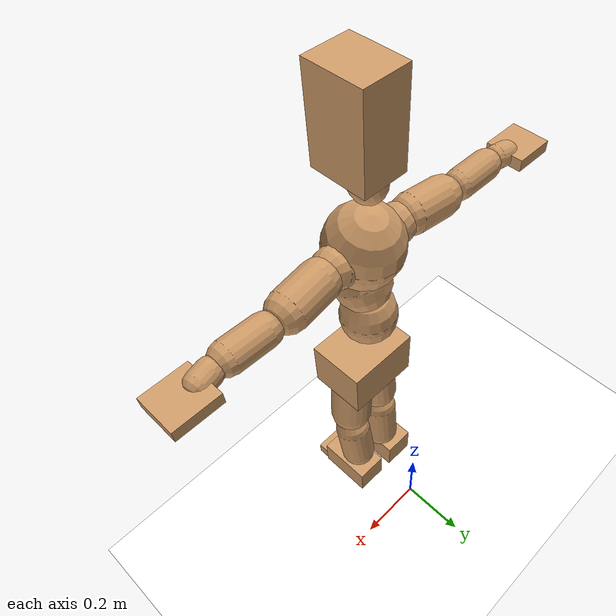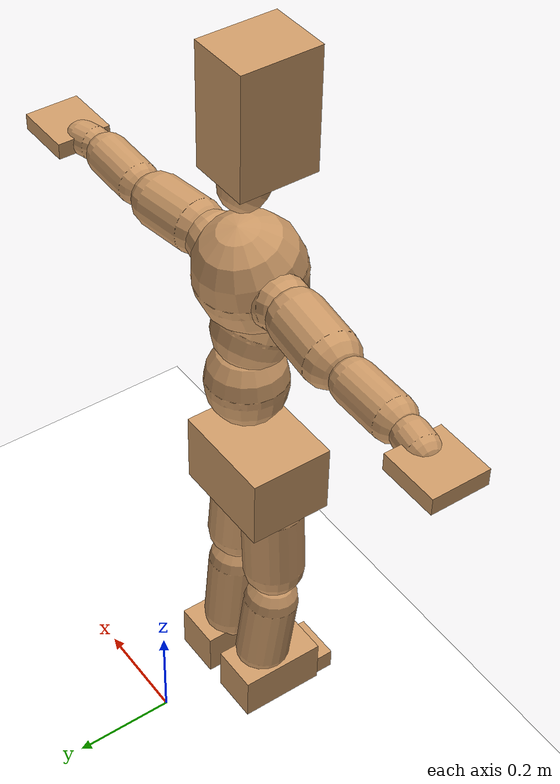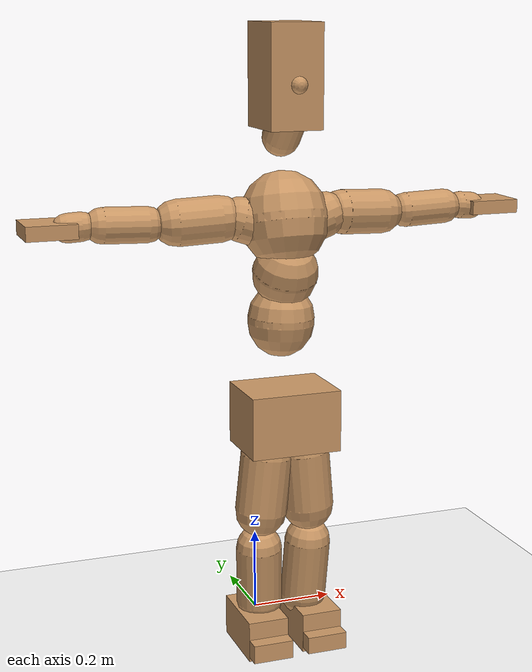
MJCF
<mujoco model="humanoid">
  <option integrator="implicitfast" />

  <visual>
    <global offwidth="1280" offheight="960" />
    <headlight active="1" ambient="0.34 0.34 0.34" diffuse="0.5 0.5 0.5" />
  </visual>

  <default>
    <joint damping="2" stiffness="2" armature="0.01" limited="true" solimplimit="0 .99 .01" />
    <geom condim="1" friction="0.7 0.005 0.0001" solimp=".99 .99 .003" solref="0.015 1" margin="0.001" rgba="0.8 0.6 .4 1" />
    <default class="smplcontact">
      <geom condim="3" friction="1. 0.005 0.0001" solref="0.015 1" solimp="0.98 0.98 0.001" priority="1" />
    </default>
    <default class="stiff_medium">
      <joint stiffness="10" />
    </default>
    <default class="stiff_medium_higher">
      <joint stiffness="50" />
    </default>
    <default class="stiff_high">
      <joint stiffness="100" />
    </default>
  </default>

  <asset>
    <texture type="skybox" builtin="gradient" rgb1="0.99 0.99 0.99" rgb2="0.608 0.828 0.892" width="100" />
    <texture builtin="flat" height="1278" mark="cross" markrgb="1 1 1" name="texgeom" random="0.01" rgb1="0.8 0.6 0.4" rgb2="0.8 0.6 0.4" type="cube" width="127" />
    <texture name="texplane" type="2d" builtin="checker" markrgb="1 1 1" rgb1="0.756 0.772 0.76" rgb2="0.6 0.6 0.6" width="100" height="100" />
    <material name="MatPlane" reflectance="0.5" texture="texplane" texrepeat="1 1" texuniform="true" />
    <material name="geom" texture="texgeom" texuniform="true" />
  </asset>

  <worldbody>
    <light name="tracking_light" pos="0 0 7" dir="0 0 -1" directional="true" cutoff="100" exponent="1" diffuse="1 1 1" specular="0.1 0.1 0.1" mode="trackcom" />
    <camera name="back" pos="0 3 2.4" xyaxes="-1 0 0 0 -1 2" mode="trackcom" />
    <camera name="side" pos="-3 0 2.4" xyaxes="0 -1 0 1 0 2" mode="trackcom" />
    <camera name="front_side" pos="-2.8 -2.8 0.8" xyaxes="0.5 -0.5 0 0.1 0.1 1" mode="trackcom" />
    <geom condim="3" name="floor" pos="0 0 0" rgba="1 1 1 1" size="100 100 .2" type="plane" material="MatPlane" />
    <body name="Pelvis" pos="-0.0018 -0.2233 0.58114" euler="90 0 0">
      <site name="Pelvis" size="0.01" />
      <freejoint name="Pelvis" />
      <geom type="box" pos="-0.0000 -0.0121 -0.0055" size="0.1069 0.0722 0.083" quat="1.0000 0.0000 0.0000 0.0000" density="3165.830099" name="Pelvis" />
      <body name="L_Hip" pos="0.0417 -0.05484 -0.00408">
        <joint name="L_Hip_x" type="hinge" pos="0 0 0" axis="1 0 0" stiffness="4.397824042553191" range="-160.0 22.92" class="stiff_medium" damping="5.319089110098848" armature="0.0028592633980818096"/>
        <joint name="L_Hip_y" type="hinge" pos="0 0 0" axis="0 1 0" stiffness="4.438903723404256" range="-70.0 70.0" class="stiff_medium" damping="4.967409097366763" armature="0.005558839451845188"/>
        <joint name="L_Hip_z" type="hinge" pos="0 0 0" axis="0 0 1" stiffness="4.442079574468085" range="-28.65 90.0" class="stiff_medium" damping="3.5611331460071307" armature="0.002854894666111244"/>
        <geom type="capsule" density="2040.816327" fromto="0.00414 -0.045 -0.00054 0.01644 -0.18012 -0.00216" size="0.0615" name="L_Hip" />
        <body name="L_Knee" pos="0.02058 -0.22512 -0.0027">
          <joint name="L_Knee_x" type="hinge" pos="0 0 0" axis="1 0 0" range="-5.16 171.89" damping="3.0827000143891885" armature="0.003175215421320088" stiffness="0.9352750638297871"/>
          <joint name="L_Knee_y" type="hinge" pos="0 0 0" axis="0 1 0" range="-4.58 6.88" damping="4.212220667157235" armature="0.006135039699020378" stiffness="0.903763658186864"/>
          <joint name="L_Knee_z" type="hinge" pos="0 0 0" axis="0 0 1" range="-6.88 4.58" damping="3.0956438525734975" armature="0.0031516224472256994" stiffness="0.9502061063829786"/>
          <geom type="capsule" density="1234.567901" fromto="-0.00162 -0.04776 -0.00522 -0.00654 -0.19104 -0.021" size="0.0541" name="L_Knee" />
          <body name="L_Ankle" pos="-0.00816 -0.2388 -0.02622">
            <joint name="L_Ankle_x" type="hinge" pos="0 0 0" axis="1 0 0" range="-45.84 45.84" class="stiff_medium" damping="3.536602461224016" armature="0.005790535633673964" stiffness="6.000000000000002"/>
            <joint name="L_Ankle_y" type="hinge" pos="0 0 0" axis="0 1 0" range="-74.48 22.92" class="stiff_medium" damping="1.7920530037828966" armature="0.005947136978457965" stiffness="6.000000000000002"/>
            <joint name="L_Ankle_z" type="hinge" pos="0 0 0" axis="0 0 1" range="-4.58 4.58" class="stiff_medium" damping="3.880755062801919" armature="0.006972342526603111" stiffness="6.000000000000002"/>
            <geom type="box" pos="0.01398 -0.01434 0.01452" size="0.0483 0.0464 0.085" quat="1.0000 0.0000 0.0000 0.0000" density="449.071558" name="L_Ankle" class="smplcontact" />
            <body name="L_Toe" pos="0.01584 -0.03348 0.07158">
              <joint name="L_Toe_x" type="hinge" pos="0 0 0" axis="1 0 0" range="-91.67 22.92" armature="0.007566797366862117" damping="1.3476020807519216" stiffness="1.2000000000000004"/>
              <joint name="L_Toe_y" type="hinge" pos="0 0 0" axis="0 1 0" range="-4.58 4.58" armature="0.008285612311110547" damping="1.410158485655613" stiffness="1.2000000000000004"/>
              <joint name="L_Toe_z" type="hinge" pos="0 0 0" axis="0 0 1" range="-4.58 4.58" armature="0.009739017438343595" damping="1.5288440683086237" stiffness="1.2000000000000004"/>
              <geom type="box" pos="-0.0018 0.0033 0.01488" size="0.0478 0.02 0.0496" quat="1.0000 0.0000 0.0000 0.0000" density="423.206892" name="L_Toe" class="smplcontact" />
            </body>
          </body>
        </body>
      </body>
      <body name="R_Hip" pos="-0.04062 -0.0543 -0.00258">
        <joint name="R_Hip_x" type="hinge" pos="0 0 0" axis="1 0 0" stiffness="4.397824042553191" range="-160.0 22.92" class="stiff_medium" damping="5.319089110098848" armature="0.0028592633980818096"/>
        <joint name="R_Hip_y" type="hinge" pos="0 0 0" axis="0 1 0" stiffness="4.438903723404256" range="-70.0 70.0" class="stiff_medium" damping="4.967409097366763" armature="0.005558839451845188"/>
        <joint name="R_Hip_z" type="hinge" pos="0 0 0" axis="0 0 1" stiffness="4.442079574468085" range="-90.0 28.65" class="stiff_medium" damping="3.5611331460071307" armature="0.002854894666111244"/>
        <geom type="capsule" density="2040.816327" fromto="-0.00462 -0.0459 -0.00108 -0.01836 -0.18366 -0.00426" size="0.0606" name="R_Hip" />
        <body name="R_Knee" pos="-0.02298 -0.22956 -0.00534">
          <joint name="R_Knee_x" type="hinge" pos="0 0 0" axis="1 0 0" range="-5.16 171.89" damping="3.0827000143891885" armature="0.003175215421320088" stiffness="0.9352750638297871"/>
          <joint name="R_Knee_y" type="hinge" pos="0 0 0" axis="0 1 0" range="-6.88 4.58" damping="4.212220667157235" armature="0.006135039699020378" stiffness="0.903763658186864"/>
          <joint name="R_Knee_z" type="hinge" pos="0 0 0" axis="0 0 1" range="-4.58 6.88" damping="3.0956438525734975" armature="0.0031516224472256994" stiffness="0.9502061063829786"/>
          <geom type="capsule" density="1234.567901" fromto="0.00192 -0.04782 -0.0051 0.00756 -0.19122 -0.02028" size="0.0541" name="R_Knee" />
          <body name="R_Ankle" pos="0.00948 -0.23904 -0.02538">
            <joint name="R_Ankle_x" type="hinge" pos="0 0 0" axis="1 0 0" range="-45.84 45.84" class="stiff_medium" damping="3.536602461224016" armature="0.005790535633673964" stiffness="6.000000000000002"/>
            <joint name="R_Ankle_y" type="hinge" pos="0 0 0" axis="0 1 0" range="-22.92 74.48" class="stiff_medium" damping="1.7920530037828966" armature="0.005947136978457965" stiffness="6.000000000000002"/>
            <joint name="R_Ankle_z" type="hinge" pos="0 0 0" axis="0 0 1" range="-4.58 4.58" class="stiff_medium" damping="3.880755062801919" armature="0.006972342526603111" stiffness="6.000000000000002"/>
            <geom type="box" pos="-0.01272 -0.01044 0.01536" size="0.0483 0.0478 0.0865" quat="1.0000 0.0000 0.0000 0.0000" density="434.700981" name="R_Ankle" class="smplcontact" />
            <body name="R_Toe" pos="-0.01524 -0.02886 0.07398">
              <joint name="R_Toe_x" type="hinge" pos="0 0 0" axis="1 0 0" range="-91.67 22.92" armature="0.007566797366862117" damping="1.3476020807519216" stiffness="1.2000000000000004"/>
              <joint name="R_Toe_y" type="hinge" pos="0 0 0" axis="0 1 0" range="-4.58 4.58" armature="0.008285612311110547" damping="1.410158485655613" stiffness="1.2000000000000004"/>
              <joint name="R_Toe_z" type="hinge" pos="0 0 0" axis="0 0 1" range="-4.58 4.58" armature="0.009739017438343595" damping="1.5288440683086237" stiffness="1.2000000000000004"/>
              <geom type="box" pos="0.00252 0.0027 0.01362" size="0.0479 0.0216 0.0493" quat="1.0000 0.0000 0.0000 0.0000" density="407.384095" name="R_Toe" class="smplcontact" />
            </body>
          </body>
        </body>
      </body>
      <body name="Torso" pos="-0.003 0.1308 -0.03204">
        <joint name="Torso_x" type="hinge" pos="0 0 0" axis="1 0 0" range="-25.78 57.3" class="stiff_medium" damping="16.70738652663647" armature="0.01171023884090964" stiffness="10.594214680851064"/>
        <joint name="Torso_y" type="hinge" pos="0 0 0" axis="0 1 0" range="-57.3 57.3" class="stiff_high" damping="12.623214725191652" armature="0.0036974054448070622" stiffness="107.74146382978722"/>
        <joint name="Torso_z" type="hinge" pos="0 0 0" axis="0 0 1" range="-34.38 34.38" class="stiff_high" damping="20.071967363559263" armature="0.009024248347846871" stiffness="111.61147674418605"/>
        <geom type="capsule" density="2040.816327" fromto="0.003 0.07296 0.0006 0.0036 0.08916 0.00072" size="0.0769" name="Torso" />
        <body name="Spine" pos="0.0066 0.16224 0.00132">
          <joint name="Spine_x" type="hinge" pos="0 0 0" axis="1 0 0" stiffness="10.280432173913045" range="-25.78 57.3" class="stiff_medium" damping="15.885833461063587" armature="0.010910034411156766"/>
          <joint name="Spine_y" type="hinge" pos="0 0 0" axis="0 1 0" stiffness="9.942316190476191" range="-57.3 57.3" class="stiff_high" damping="4.817877895223455" armature="0.00364790931392791"/>
          <joint name="Spine_z" type="hinge" pos="0 0 0" axis="0 0 1" stiffness="20.654877499999998" range="-34.38 34.38" class="stiff_high" damping="10.159230450327204" armature="0.006940112392800273"/>
          <geom type="capsule" density="2040.816327" fromto="0.00084 0.02856 0.01368 0.00096 0.03492 0.0168" size="0.0755" name="Spine" />
          <body name="Chest" pos="0.0018 0.06348 0.03048">
            <joint name="Chest_x" type="hinge" pos="0 0 0" axis="1 0 0" stiffness="9.397147727272728" range="-25.78 57.3" class="stiff_medium" damping="14.892475081462655" armature="0.01048950977177003"/>
            <joint name="Chest_y" type="hinge" pos="0 0 0" axis="0 1 0" stiffness="8.163795" range="-57.3 57.3" class="stiff_high" damping="4.363516163346293" armature="0.003644190850384294"/>
            <joint name="Chest_z" type="hinge" pos="0 0 0" axis="0 0 1" stiffness="19.876458095238092" range="-34.38 34.38" class="stiff_high" damping="9.32750627384057" armature="0.006079384414890268"/>
            <geom type="capsule" density="2040.816327" fromto="-0.00108 0.08184 -0.02076 -0.0012 0.09996 -0.02544" size="0.1002" name="Chest" />
            <body name="Neck" pos="-0.00336 0.25668 -0.05148">
              <joint name="Neck_x" type="hinge" pos="0 0 0" axis="1 0 0" range="-28.65 57.3" class="stiff_medium_higher" damping="10.144663197042432" armature="0.01006247492540222" stiffness="51.13761382978724"/>
              <joint name="Neck_y" type="hinge" pos="0 0 0" axis="0 1 0" range="-40.11 40.11" class="stiff_medium_higher" damping="10.176871173316528" armature="0.010170205863853494" stiffness="50.91770425531914"/>
              <joint name="Neck_z" type="hinge" pos="0 0 0" axis="0 0 1" range="-40.11 40.11" class="stiff_medium_higher" damping="10.071027110775933" armature="0.010043564843946202" stiffness="50.49282234042555"/>
              <geom type="capsule" density="1000" fromto="0.0012 0.0156 0.01236 0.00492 0.0624 0.04932" size="0.0436" name="Neck" />
              <body name="Head" pos="0.0052 0.065 0.0513">
                <joint name="Head_x" type="hinge" pos="0 0 0" axis="1 0 0" range="-28.65 57.3" class="stiff_medium_higher" damping="2.0000000000000058" armature="0.010000000000000057" stiffness="50.0"/>
                <joint name="Head_y" type="hinge" pos="0 0 0" axis="0 1 0" range="-40.11 40.11" class="stiff_medium_higher" damping="1.9999999999999998" armature="0.009999999999999998" stiffness="50.0"/>
                <joint name="Head_z" type="hinge" pos="0 0 0" axis="0 0 1" range="-40.11 40.11" class="stiff_medium_higher" damping="2.0000000000000053" armature="0.010000000000000056" stiffness="50.0"/>
                <geom type="box" pos="-0.0042 0.0876 -0.0116" size="0.0606 0.1154 0.076" quat="1.0000 0.0000 0.0000 0.0000" density="1018.069894" name="Head" />
                <geom type="capsule" name="nose" size="0.02 0.01" pos="0 0.07 0.05" quat="1 0 0 0" mass="0" contype="0" conaffinity="0" />
              </body>
            </body>
            <body name="L_Thorax" pos="0.05122 0.079105 -0.022165">
              <joint name="L_Thorax_x" type="hinge" pos="0 0 0" axis="1 0 0" range="-10.89 4.58" class="stiff_medium_higher" damping="10.473520536551499" armature="0.005367265364664291" stiffness="25.547142021276592"/>
              <joint name="L_Thorax_y" type="hinge" pos="0 0 0" axis="0 1 0" range="-28.65 17.19" class="stiff_medium_higher" damping="8.336775284610718" armature="0.003437322972634006" stiffness="25.2746914893617"/>
              <joint name="L_Thorax_z" type="hinge" pos="0 0 0" axis="0 0 1" range="-31.51 40.11" class="stiff_medium_higher" damping="8.336154780940046" armature="0.003435544433695516" stiffness="25.284011702127664"/>
              <geom type="capsule" density="1000" fromto="0.01183 0.003965 -0.00117 0.04732 0.01586 -0.004615" size="0.0521" name="L_Thorax" />
              <body name="L_Shoulder" pos="0.05915 0.019825 -0.005785">
                <joint name="L_Shoulder_x" type="hinge" pos="0 0 0" axis="1 0 0" range="-97.4 97.4" class="stiff_medium" damping="3.3553730459206346" armature="0.006066729218859644" stiffness="5.154950638297873"/>
                <joint name="L_Shoulder_y" type="hinge" pos="0 0 0" axis="0 1 0" range="-108.86 80.21" class="stiff_medium" damping="2.524551062548474" armature="0.0034852077596964704" stiffness="5.07968925531915"/>
                <joint name="L_Shoulder_z" type="hinge" pos="0 0 0" axis="0 0 1" range="-97.4 85.94" class="stiff_medium" damping="2.523797267915454" armature="0.0034826966194569852" stiffness="5.08031670212766"/>
                <geom type="capsule" density="1000" fromto="0.033735 -0.00169 -0.003575 0.135005 -0.00663 -0.0143" size="0.0517" name="L_Shoulder" />
                <body name="L_Elbow" pos="0.16874 -0.00832 -0.017875">
                  <joint name="L_Elbow_x" type="hinge" pos="0 0 0" axis="1 0 0" range="-17.19 4.58" damping="3.11696850201617" armature="0.007304023016496896" stiffness="1.0641250851063833"/>
                  <joint name="L_Elbow_y" type="hinge" pos="0 0 0" axis="0 1 0" range="-180.0 17.19" damping="2.2249600624676305" armature="0.0037239112482399445" stiffness="1.06349414893617"/>
                  <joint name="L_Elbow_z" type="hinge" pos="0 0 0" axis="0 0 1" range="-100.84 4.58" damping="2.222287907914056" armature="0.0037107287130396095" stiffness="1.0647102340425534"/>
                  <geom type="capsule" density="1000" fromto="0.03237 0.00117 -0.00013 0.12961 0.00468 -0.000585" size="0.0405" name="L_Elbow" />
                  <body name="L_Wrist" pos="0.16198 0.00585 -0.00078">
                    <joint name="L_Wrist_x" type="hinge" pos="0 0 0" axis="1 0 0" range="-180.0 22.92" armature="0.007938455639922093" damping="1.3902321117333034" stiffness="1.2173308085106385"/>
                    <joint name="L_Wrist_y" type="hinge" pos="0 0 0" axis="0 1 0" range="-17.19 17.19" armature="0.004732731801005157" damping="1.0682719732291899" stiffness="1.2056514680851063"/>
                    <joint name="L_Wrist_z" type="hinge" pos="0 0 0" axis="0 0 1" range="-22.92 22.92" armature="0.0045469461785910695" damping="1.0492676327903798" stiffness="1.2106615319148935"/>
                    <geom type="capsule" density="1000" fromto="0.01092 -0.00104 -0.00195 0.04368 -0.004225 -0.0078" size="0.0318" name="L_Wrist" class="smplcontact" />
                    <body name="L_Hand" pos="0.0546 -0.00533 -0.009685">
                      <joint name="L_Hand_x" type="hinge" pos="0 0 0" axis="1 0 0" range="-17.19 17.19" armature="0.009748405422993602" damping="1.5920381308179574" stiffness="1.2999999999999996"/>
                      <joint name="L_Hand_y" type="hinge" pos="0 0 0" axis="0 1 0" range="-51.57 51.57" armature="0.006957310703120907" damping="1.3449538218137584" stiffness="1.2999999999999996"/>
                      <joint name="L_Hand_z" type="hinge" pos="0 0 0" axis="0 0 1" range="-91.67 91.67" armature="0.006213306270584727" damping="1.2710073289922559" stiffness="1.2999999999999996"/>
                      <geom type="box" pos="0.032045 0.00065 -0.00377" size="0.0585 0.0158 0.0538" quat="1.0000 0.0000 0.0000 0.0000" density="400.552564" name="L_Hand" class="smplcontact" />
                    </body>
                  </body>
                </body>
              </body>
            </body>
            <body name="R_Thorax" pos="-0.05317 0.07722 -0.02509">
              <joint name="R_Thorax_x" type="hinge" pos="0 0 0" axis="1 0 0" range="-10.89 4.58" class="stiff_medium_higher" damping="10.473520536551499" armature="0.005367265364664291" stiffness="25.547142021276592"/>
              <joint name="R_Thorax_y" type="hinge" pos="0 0 0" axis="0 1 0" range="-17.19 28.65" class="stiff_medium_higher" damping="8.336775284610718" armature="0.003437322972634006" stiffness="25.2746914893617"/>
              <joint name="R_Thorax_z" type="hinge" pos="0 0 0" axis="0 0 1" range="-40.11 31.51" class="stiff_medium_higher" damping="8.336154780940046" armature="0.003435544433695516" stiffness="25.284011702127664"/>
              <geom type="capsule" density="1000" fromto="-0.01248 0.004225 -0.00117 -0.04992 0.0169 -0.004745" size="0.0511" name="R_Thorax" />
              <body name="R_Shoulder" pos="-0.0624 0.02119 -0.005915">
                <joint name="R_Shoulder_x" type="hinge" pos="0 0 0" axis="1 0 0" range="-97.4 97.4" class="stiff_medium" damping="3.3553730459206346" armature="0.006066729218859644" stiffness="5.154950638297873"/>
                <joint name="R_Shoulder_y" type="hinge" pos="0 0 0" axis="0 1 0" range="-80.21 108.86" class="stiff_medium" damping="2.524551062548474" armature="0.0034852077596964704" stiffness="5.07968925531915"/>
                <joint name="R_Shoulder_z" type="hinge" pos="0 0 0" axis="0 0 1" range="-85.94 97.4" class="stiff_medium" damping="2.523797267915454" armature="0.0034826966194569852" stiffness="5.08031670212766"/>
                <geom type="capsule" density="1000" fromto="-0.032955 -0.001755 -0.002795 -0.13195 -0.006955 -0.011115" size="0.0531" name="R_Shoulder" />
                <body name="R_Elbow" pos="-0.164905 -0.008645 -0.01391">
                  <joint name="R_Elbow_x" type="hinge" pos="0 0 0" axis="1 0 0" range="-17.19 4.58" damping="3.11696850201617" armature="0.007304023016496896" stiffness="1.0641250851063833"/>
                  <joint name="R_Elbow_y" type="hinge" pos="0 0 0" axis="0 1 0" range="-17.19 180.0" damping="2.2249600624676305" armature="0.0037239112482399445" stiffness="1.06349414893617"/>
                  <joint name="R_Elbow_z" type="hinge" pos="0 0 0" axis="0 0 1" range="-4.58 100.84" damping="2.222287907914056" armature="0.0037107287130396095" stiffness="1.0647102340425534"/>
                  <geom type="capsule" density="1000" fromto="-0.033215 0.00104 -0.000715 -0.13273 0.00403 -0.00286" size="0.0408" name="R_Elbow" />
                  <body name="R_Wrist" pos="-0.165945 0.00507 -0.00364">
                    <joint name="R_Wrist_x" type="hinge" pos="0 0 0" axis="1 0 0" range="-180.0 22.92" armature="0.007938455639922093" damping="1.3902321117333034" stiffness="1.2173308085106385"/>
                    <joint name="R_Wrist_y" type="hinge" pos="0 0 0" axis="0 1 0" range="-17.19 17.19" armature="0.004732731801005157" damping="1.0682719732291899" stiffness="1.2056514680851063"/>
                    <joint name="R_Wrist_z" type="hinge" pos="0 0 0" axis="0 0 1" range="-22.92 22.92" armature="0.0045469461785910695" damping="1.0492676327903798" stiffness="1.2106615319148935"/>
                    <geom type="capsule" density="1000" fromto="-0.010985 -0.00078 -0.001365 -0.044005 -0.003185 -0.005395" size="0.0326" name="R_Wrist" class="smplcontact" />
                    <body name="R_Hand" pos="-0.05499 -0.003965 -0.006695">
                      <joint name="R_Hand_x" type="hinge" pos="0 0 0" axis="1 0 0" range="-17.19 17.19" armature="0.009748405422993602" damping="1.5920381308179574" stiffness="1.2999999999999996"/>
                      <joint name="R_Hand_y" type="hinge" pos="0 0 0" axis="0 1 0" range="-51.57 51.57" armature="0.006957310703120907" damping="1.3449538218137584" stiffness="1.2999999999999996"/>
                      <joint name="R_Hand_z" type="hinge" pos="0 0 0" axis="0 0 1" range="-91.67 91.67" armature="0.006213306270584727" damping="1.2710073289922559" stiffness="1.2999999999999996"/>
                      <geom type="box" pos="-0.03003 -0.000585 -0.005135" size="0.0569 0.0164 0.0546" quat="1.0000 0.0000 0.0000 0.0000" density="403.679611" name="R_Hand" class="smplcontact" />
                    </body>
                  </body>
                </body>
              </body>
            </body>
          </body>
        </body>
      </body>
    </body>
  </worldbody>
  <actuator>
    <general name="L_Hip_x" joint="L_Hip_x" biastype="affine" gainprm="126.36270640355542" biasprm="-94.6960408582953 -79.16083276595744 -0.7092118813465131" ctrllimited="true" ctrlrange="-1 1" forcerange="-158.32166553191487 158.32166553191487" />
    <general name="L_Hip_y" joint="L_Hip_y" biastype="affine" gainprm="97.61659129207433" biasprm="0.0 -79.9002670212766 -0.9934818194733526" ctrllimited="true" ctrlrange="-1 1" forcerange="-159.8005340425532 159.8005340425532" />
    <general name="L_Hip_z" joint="L_Hip_z" biastype="affine" gainprm="82.78925103920908" biasprm="42.80758998108282 -79.95743234042553 -0.7122266292014261" ctrllimited="true" ctrlrange="-1 1" forcerange="-159.91486468085105 159.91486468085105" />
    <general name="L_Knee_x" joint="L_Knee_x" biastype="affine" gainprm="130.0544353462624" biasprm="122.47374191065987 -84.17475574468084 -0.7706750035972971" ctrllimited="true" ctrlrange="-1 1" forcerange="-168.34951148936167 168.34951148936167" />
    <general name="L_Knee_y" joint="L_Knee_y" biastype="affine" gainprm="8.134472076089793" biasprm="1.632572929756241 -81.33872923681776 -1.0530551667893087" ctrllimited="true" ctrlrange="-1 1" forcerange="-162.6774584736355 162.6774584736355" />
    <general name="L_Knee_z" joint="L_Knee_z" biastype="affine" gainprm="8.552484898993576" biasprm="-1.716467300845133 -85.51854957446808 -0.7739109631433744" ctrllimited="true" ctrlrange="-1 1" forcerange="-171.03709914893616 171.03709914893616" />
    <general name="L_Ankle_x" joint="L_Ankle_x" biastype="affine" gainprm="43.203182172166855" biasprm="0.0 -54.00000000000002 -1.178867487074672" ctrllimited="true" ctrlrange="-1 1" forcerange="-108.00000000000004 108.00000000000004" />
    <general name="L_Ankle_y" joint="L_Ankle_y" biastype="affine" gainprm="45.898668668946904" biasprm="-24.297077582863473 -54.00000000000002 -1.194702002521931" ctrllimited="true" ctrlrange="-1 1" forcerange="-108.00000000000004 108.00000000000004" />
    <general name="L_Ankle_z" joint="L_Ankle_z" biastype="affine" gainprm="4.316548306032376" biasprm="0.0 -54.00000000000002 -1.293585020933973" ctrllimited="true" ctrlrange="-1 1" forcerange="-108.00000000000004 108.00000000000004" />
    <general name="L_Toe_x" joint="L_Toe_x" biastype="affine" gainprm="43.19941226098254" biasprm="-25.918139392115798 -43.20000000000002 -0.5390408323007686" ctrllimited="true" ctrlrange="-1 1" forcerange="-86.40000000000003 86.40000000000003" />
    <general name="L_Toe_y" joint="L_Toe_y" biastype="affine" gainprm="3.453238644825902" biasprm="0.0 -43.20000000000002 -0.5640633942622453" ctrllimited="true" ctrlrange="-1 1" forcerange="-86.40000000000003 86.40000000000003" />
    <general name="L_Toe_z" joint="L_Toe_z" biastype="affine" gainprm="3.453238644825902" biasprm="0.0 -43.20000000000002 -0.6115376273234495" ctrllimited="true" ctrlrange="-1 1" forcerange="-86.40000000000003 86.40000000000003" />
    <general name="R_Hip_x" joint="R_Hip_x" biastype="affine" gainprm="126.36270640355542" biasprm="-94.6960408582953 -79.16083276595744 -0.7092118813465131" ctrllimited="true" ctrlrange="-1 1" forcerange="-158.32166553191487 158.32166553191487" />
    <general name="R_Hip_y" joint="R_Hip_y" biastype="affine" gainprm="97.61659129207433" biasprm="0.0 -79.9002670212766 -0.9934818194733526" ctrllimited="true" ctrlrange="-1 1" forcerange="-159.8005340425532 159.8005340425532" />
    <general name="R_Hip_z" joint="R_Hip_z" biastype="affine" gainprm="82.78925103920908" biasprm="-42.80758998108282 -79.95743234042553 -0.7122266292014261" ctrllimited="true" ctrlrange="-1 1" forcerange="-159.91486468085105 159.91486468085105" />
    <general name="R_Knee_x" joint="R_Knee_x" biastype="affine" gainprm="130.0544353462624" biasprm="122.47374191065987 -84.17475574468084 -0.7706750035972971" ctrllimited="true" ctrlrange="-1 1" forcerange="-168.34951148936167 168.34951148936167" />
    <general name="R_Knee_y" joint="R_Knee_y" biastype="affine" gainprm="8.134472076089793" biasprm="-1.632572929756241 -81.33872923681776 -1.0530551667893087" ctrllimited="true" ctrlrange="-1 1" forcerange="-162.6774584736355 162.6774584736355" />
    <general name="R_Knee_z" joint="R_Knee_z" biastype="affine" gainprm="8.552484898993576" biasprm="1.716467300845133 -85.51854957446808 -0.7739109631433744" ctrllimited="true" ctrlrange="-1 1" forcerange="-171.03709914893616 171.03709914893616" />
    <general name="R_Ankle_x" joint="R_Ankle_x" biastype="affine" gainprm="43.203182172166855" biasprm="0.0 -54.00000000000002 -1.178867487074672" ctrllimited="true" ctrlrange="-1 1" forcerange="-108.00000000000004 108.00000000000004" />
    <general name="R_Ankle_y" joint="R_Ankle_y" biastype="affine" gainprm="45.898668668946904" biasprm="24.297077582863473 -54.00000000000002 -1.194702002521931" ctrllimited="true" ctrlrange="-1 1" forcerange="-108.00000000000004 108.00000000000004" />
    <general name="R_Ankle_z" joint="R_Ankle_z" biastype="affine" gainprm="4.316548306032376" biasprm="0.0 -54.00000000000002 -1.293585020933973" ctrllimited="true" ctrlrange="-1 1" forcerange="-108.00000000000004 108.00000000000004" />
    <general name="R_Toe_x" joint="R_Toe_x" biastype="affine" gainprm="43.19941226098254" biasprm="-25.918139392115798 -43.20000000000002 -0.5390408323007686" ctrllimited="true" ctrlrange="-1 1" forcerange="-86.40000000000003 86.40000000000003" />
    <general name="R_Toe_y" joint="R_Toe_y" biastype="affine" gainprm="3.453238644825902" biasprm="0.0 -43.20000000000002 -0.5640633942622453" ctrllimited="true" ctrlrange="-1 1" forcerange="-86.40000000000003 86.40000000000003" />
    <general name="R_Toe_z" joint="R_Toe_z" biastype="affine" gainprm="3.453238644825902" biasprm="0.0 -43.20000000000002 -0.6115376273234495" ctrllimited="true" ctrlrange="-1 1" forcerange="-86.40000000000003 86.40000000000003" />
    <general name="Torso_x" joint="Torso_x" biastype="affine" gainprm="184.34181990332564" biasprm="69.93806166770369 -254.26115234042553 -4.455303073769725" ctrllimited="true" ctrlrange="-1 1" forcerange="-381.3917285106383 381.3917285106383" />
    <general name="Torso_y" joint="Torso_y" biastype="affine" gainprm="258.5985605185678" biasprm="0.0 -258.57951319148935 -2.5246429450383303" ctrllimited="true" ctrlrange="-1 1" forcerange="-387.869269787234 387.869269787234" />
    <general name="Torso_z" joint="Torso_z" biastype="affine" gainprm="160.73236540945445" biasprm="0.0 -267.86754418604653 -4.014393472711853" ctrllimited="true" ctrlrange="-1 1" forcerange="-401.8013162790698 401.8013162790698" />
    <general name="Spine_x" joint="Spine_x" biastype="affine" gainprm="178.88193069725423" biasprm="67.86661597950712 -246.73037217391308 -4.236222256283623" ctrllimited="true" ctrlrange="-1 1" forcerange="-370.09555826086967 370.09555826086967" />
    <general name="Spine_y" joint="Spine_y" biastype="affine" gainprm="238.6331653280148" biasprm="0.0 -238.61558857142856 -2.4089389476117273" ctrllimited="true" ctrlrange="-1 1" forcerange="-357.9233828571428 357.9233828571428" />
    <general name="Spine_z" joint="Spine_z" biastype="affine" gainprm="148.726072562715" biasprm="0.0 -247.85853 -3.386410150109068" ctrllimited="true" ctrlrange="-1 1" forcerange="-371.787795 371.787795" />
    <general name="Chest_x" joint="Chest_x" biastype="affine" gainprm="163.51257418607412" biasprm="62.03558423621877 -225.53154545454547 -3.9713266883900413" ctrllimited="true" ctrlrange="-1 1" forcerange="-338.2973181818182 338.2973181818182" />
    <general name="Chest_y" joint="Chest_y" biastype="affine" gainprm="195.94551255623597" biasprm="0.0 -195.93108 -2.1817580816731463" ctrllimited="true" ctrlrange="-1 1" forcerange="-293.89662 293.89662" />
    <general name="Chest_z" joint="Chest_z" biastype="affine" gainprm="143.1210400043353" biasprm="0.0 -238.51749714285714 -3.1091687579468563" ctrllimited="true" ctrlrange="-1 1" forcerange="-357.7762457142857 357.7762457142857" />
    <general name="Neck_x" joint="Neck_x" biastype="affine" gainprm="27.616345576727703" biasprm="9.205448525575902 -36.81908195744681 -0.8115730557633946" ctrllimited="true" ctrlrange="-1 1" forcerange="-73.63816391489362 73.63816391489362" />
    <general name="Neck_y" joint="Neck_y" biastype="affine" gainprm="25.66441328186245" biasprm="0.0 -36.66074706382978 -0.8141496938653223" ctrllimited="true" ctrlrange="-1 1" forcerange="-73.32149412765956 73.32149412765956" />
    <general name="Neck_z" joint="Neck_z" biastype="affine" gainprm="25.450257022869703" biasprm="0.0 -36.354832085106395 -0.8056821688620748" ctrllimited="true" ctrlrange="-1 1" forcerange="-72.70966417021279 72.70966417021279" />
    <general name="Head_x" joint="Head_x" biastype="affine" gainprm="18.001325905069514" biasprm="6.000441968356505 -24.0 -0.8000000000000024" ctrllimited="true" ctrlrange="-1 1" forcerange="-48.0 48.0" />
    <general name="Head_y" joint="Head_y" biastype="affine" gainprm="16.801237511398213" biasprm="0.0 -24.0 -0.7999999999999999" ctrllimited="true" ctrlrange="-1 1" forcerange="-48.0 48.0" />
    <general name="Head_z" joint="Head_z" biastype="affine" gainprm="16.801237511398213" biasprm="0.0 -24.0 -0.8000000000000022" ctrllimited="true" ctrlrange="-1 1" forcerange="-48.0 48.0" />
    <general name="L_Thorax_x" joint="L_Thorax_x" biastype="affine" gainprm="8.277348672334437" biasprm="-3.3762165560717725 -61.31314085106382 -0.83788164292412" ctrllimited="true" ctrlrange="-1 1" forcerange="-122.62628170212764 122.62628170212764" />
    <general name="L_Thorax_y" joint="L_Thorax_y" biastype="affine" gainprm="24.265491128004626" biasprm="-6.066372782001157 -60.65925957446808 -0.6669420227688576" ctrllimited="true" ctrlrange="-1 1" forcerange="-121.31851914893616 121.31851914893616" />
    <general name="L_Thorax_z" joint="L_Thorax_z" biastype="affine" gainprm="37.926163500952065" biasprm="4.554105083889803 -60.68162808510639 -0.6668923824752038" ctrllimited="true" ctrlrange="-1 1" forcerange="-121.36325617021278 121.36325617021278" />
    <general name="L_Shoulder_x" joint="L_Shoulder_x" biastype="affine" gainprm="42.06317712924628" biasprm="0.0 -24.74376306382979 -0.8947661455788358" ctrllimited="true" ctrlrange="-1 1" forcerange="-49.48752612765958 49.48752612765958" />
    <general name="L_Shoulder_y" joint="L_Shoulder_y" biastype="affine" gainprm="40.22984683333194" biasprm="-6.096076118765326 -24.382508425531917 -0.6732136166795932" ctrllimited="true" ctrlrange="-1 1" forcerange="-48.765016851063834 48.765016851063834" />
    <general name="L_Shoulder_z" joint="L_Shoulder_z" biastype="affine" gainprm="39.01545023037851" biasprm="-2.438731644159151 -24.385520170212764 -0.6730126047774544" ctrllimited="true" ctrlrange="-1 1" forcerange="-48.77104034042553 48.77104034042553" />
    <general name="L_Elbow_x" joint="L_Elbow_x" biastype="affine" gainprm="7.277814516068791" biasprm="-4.215582960387114 -38.3085030638298 -0.49871496032258716" ctrllimited="true" ctrlrange="-1 1" forcerange="-76.6170061276596 76.6170061276596" />
    <general name="L_Elbow_y" joint="L_Elbow_y" biastype="affine" gainprm="65.88246872974517" biasprm="-54.395885865864464 -38.28578936170212 -0.3559936099948209" ctrllimited="true" ctrlrange="-1 1" forcerange="-76.57157872340424 76.57157872340424" />
    <general name="L_Elbow_z" joint="L_Elbow_z" biastype="affine" gainprm="35.261786625112265" biasprm="-32.19787118699779 -38.329568425531924 -0.35556606526624895" ctrllimited="true" ctrlrange="-1 1" forcerange="-76.65913685106385 76.65913685106385" />
    <general name="L_Wrist_x" joint="L_Wrist_x" biastype="affine" gainprm="12.933977149568753" biasprm="-10.012168000464516 -7.303984851063831 -0.5560928446933214" ctrllimited="true" ctrlrange="-1 1" forcerange="-14.607969702127662 14.607969702127662" />
    <general name="L_Wrist_y" joint="L_Wrist_y" biastype="affine" gainprm="2.170332500492552" biasprm="0.0 -7.2339088085106376 -0.427308789291676" ctrllimited="true" ctrlrange="-1 1" forcerange="-14.467817617021275 14.467817617021275" />
    <general name="L_Wrist_z" joint="L_Wrist_z" biastype="affine" gainprm="2.905801706230762" biasprm="0.0 -7.263969191489361 -0.419707053116152" ctrllimited="true" ctrlrange="-1 1" forcerange="-14.527938382978721 14.527938382978721" />
    <general name="L_Hand_x" joint="L_Hand_x" biastype="affine" gainprm="2.3401723676590365" biasprm="0.0 -7.799999999999997 -0.6368152523271831" ctrllimited="true" ctrlrange="-1 1" forcerange="-15.599999999999994 15.599999999999994" />
    <general name="L_Hand_y" joint="L_Hand_y" biastype="affine" gainprm="7.0205171029771085" biasprm="0.0 -7.799999999999997 -0.5379815287255034" ctrllimited="true" ctrlrange="-1 1" forcerange="-15.599999999999994 15.599999999999994" />
    <general name="L_Hand_z" joint="L_Hand_z" biastype="affine" gainprm="12.479557937364971" biasprm="0.0 -7.799999999999997 -0.5084029315969024" ctrllimited="true" ctrlrange="-1 1" forcerange="-15.599999999999994 15.599999999999994" />
    <general name="R_Thorax_x" joint="R_Thorax_x" biastype="affine" gainprm="8.277348672334437" biasprm="-3.3762165560717725 -61.31314085106382 -0.83788164292412" ctrllimited="true" ctrlrange="-1 1" forcerange="-122.62628170212764 122.62628170212764" />
    <general name="R_Thorax_y" joint="R_Thorax_y" biastype="affine" gainprm="24.265491128004626" biasprm="6.066372782001153 -60.65925957446808 -0.6669420227688576" ctrllimited="true" ctrlrange="-1 1" forcerange="-121.31851914893616 121.31851914893616" />
    <general name="R_Thorax_z" joint="R_Thorax_z" biastype="affine" gainprm="37.926163500952065" biasprm="-4.554105083889803 -60.68162808510639 -0.6668923824752038" ctrllimited="true" ctrlrange="-1 1" forcerange="-121.36325617021278 121.36325617021278" />
    <general name="R_Shoulder_x" joint="R_Shoulder_x" biastype="affine" gainprm="42.06317712924628" biasprm="0.0 -24.74376306382979 -0.8947661455788358" ctrllimited="true" ctrlrange="-1 1" forcerange="-49.48752612765958 49.48752612765958" />
    <general name="R_Shoulder_y" joint="R_Shoulder_y" biastype="affine" gainprm="40.22984683333194" biasprm="6.096076118765326 -24.382508425531917 -0.6732136166795932" ctrllimited="true" ctrlrange="-1 1" forcerange="-48.765016851063834 48.765016851063834" />
    <general name="R_Shoulder_z" joint="R_Shoulder_z" biastype="affine" gainprm="39.01545023037851" biasprm="2.438731644159146 -24.385520170212764 -0.6730126047774544" ctrllimited="true" ctrlrange="-1 1" forcerange="-48.77104034042553 48.77104034042553" />
    <general name="R_Elbow_x" joint="R_Elbow_x" biastype="affine" gainprm="7.277814516068791" biasprm="-4.215582960387114 -38.3085030638298 -0.49871496032258716" ctrllimited="true" ctrlrange="-1 1" forcerange="-76.6170061276596 76.6170061276596" />
    <general name="R_Elbow_y" joint="R_Elbow_y" biastype="affine" gainprm="65.88246872974517" biasprm="54.395885865864464 -38.28578936170212 -0.3559936099948209" ctrllimited="true" ctrlrange="-1 1" forcerange="-76.57157872340424 76.57157872340424" />
    <general name="R_Elbow_z" joint="R_Elbow_z" biastype="affine" gainprm="35.261786625112265" biasprm="32.19787118699779 -38.329568425531924 -0.35556606526624895" ctrllimited="true" ctrlrange="-1 1" forcerange="-76.65913685106385 76.65913685106385" />
    <general name="R_Wrist_x" joint="R_Wrist_x" biastype="affine" gainprm="12.933977149568753" biasprm="-10.012168000464516 -7.303984851063831 -0.5560928446933214" ctrllimited="true" ctrlrange="-1 1" forcerange="-14.607969702127662 14.607969702127662" />
    <general name="R_Wrist_y" joint="R_Wrist_y" biastype="affine" gainprm="2.170332500492552" biasprm="0.0 -7.2339088085106376 -0.427308789291676" ctrllimited="true" ctrlrange="-1 1" forcerange="-14.467817617021275 14.467817617021275" />
    <general name="R_Wrist_z" joint="R_Wrist_z" biastype="affine" gainprm="2.905801706230762" biasprm="0.0 -7.263969191489361 -0.419707053116152" ctrllimited="true" ctrlrange="-1 1" forcerange="-14.527938382978721 14.527938382978721" />
    <general name="R_Hand_x" joint="R_Hand_x" biastype="affine" gainprm="2.3401723676590365" biasprm="0.0 -7.799999999999997 -0.6368152523271831" ctrllimited="true" ctrlrange="-1 1" forcerange="-15.599999999999994 15.599999999999994" />
    <general name="R_Hand_y" joint="R_Hand_y" biastype="affine" gainprm="7.0205171029771085" biasprm="0.0 -7.799999999999997 -0.5379815287255034" ctrllimited="true" ctrlrange="-1 1" forcerange="-15.599999999999994 15.599999999999994" />
    <general name="R_Hand_z" joint="R_Hand_z" biastype="affine" gainprm="12.479557937364971" biasprm="0.0 -7.799999999999997 -0.5084029315969024" ctrllimited="true" ctrlrange="-1 1" forcerange="-15.599999999999994 15.599999999999994" />
  </actuator>
  <contact>
    <exclude body1="Torso" body2="Chest" />
    <exclude body1="Head" body2="Chest" />
    <exclude body1="R_Knee" body2="R_Toe" />
    <exclude body1="R_Knee" body2="L_Ankle" />
    <exclude body1="R_Knee" body2="L_Toe" />
    <exclude body1="L_Knee" body2="L_Toe" />
    <exclude body1="L_Knee" body2="R_Ankle" />
    <exclude body1="L_Knee" body2="R_Toe" />
    <exclude body1="L_Shoulder" body2="Chest" />
    <exclude body1="R_Shoulder" body2="Chest" />
  </contact>
  <sensor>
    <framelinvel name="sensor_Pelvis_framelinvel" objtype="xbody" objname="Pelvis" />
    <framelinvel name="sensor_L_Hip_framelinvel" objtype="xbody" objname="L_Hip" />
    <framelinvel name="sensor_L_Knee_framelinvel" objtype="xbody" objname="L_Knee" />
    <framelinvel name="sensor_L_Ankle_framelinvel" objtype="xbody" objname="L_Ankle" />
    <framelinvel name="sensor_L_Toe_framelinvel" objtype="xbody" objname="L_Toe" />
    <framelinvel name="sensor_R_Hip_framelinvel" objtype="xbody" objname="R_Hip" />
    <framelinvel name="sensor_R_Knee_framelinvel" objtype="xbody" objname="R_Knee" />
    <framelinvel name="sensor_R_Ankle_framelinvel" objtype="xbody" objname="R_Ankle" />
    <framelinvel name="sensor_R_Toe_framelinvel" objtype="xbody" objname="R_Toe" />
    <framelinvel name="sensor_Torso_framelinvel" objtype="xbody" objname="Torso" />
    <framelinvel name="sensor_Spine_framelinvel" objtype="xbody" objname="Spine" />
    <framelinvel name="sensor_Chest_framelinvel" objtype="xbody" objname="Chest" />
    <framelinvel name="sensor_Neck_framelinvel" objtype="xbody" objname="Neck" />
    <framelinvel name="sensor_Head_framelinvel" objtype="xbody" objname="Head" />
    <framelinvel name="sensor_L_Thorax_framelinvel" objtype="xbody" objname="L_Thorax" />
    <framelinvel name="sensor_L_Shoulder_framelinvel" objtype="xbody" objname="L_Shoulder" />
    <framelinvel name="sensor_L_Elbow_framelinvel" objtype="xbody" objname="L_Elbow" />
    <framelinvel name="sensor_L_Wrist_framelinvel" objtype="xbody" objname="L_Wrist" />
    <framelinvel name="sensor_L_Hand_framelinvel" objtype="xbody" objname="L_Hand" />
    <framelinvel name="sensor_R_Thorax_framelinvel" objtype="xbody" objname="R_Thorax" />
    <framelinvel name="sensor_R_Shoulder_framelinvel" objtype="xbody" objname="R_Shoulder" />
    <framelinvel name="sensor_R_Elbow_framelinvel" objtype="xbody" objname="R_Elbow" />
    <framelinvel name="sensor_R_Wrist_framelinvel" objtype="xbody" objname="R_Wrist" />
    <framelinvel name="sensor_R_Hand_framelinvel" objtype="xbody" objname="R_Hand" />
    <frameangvel name="sensor_Pelvis_frameangvel" objtype="xbody" objname="Pelvis" />
    <frameangvel name="sensor_L_Hip_frameangvel" objtype="xbody" objname="L_Hip" />
    <frameangvel name="sensor_L_Knee_frameangvel" objtype="xbody" objname="L_Knee" />
    <frameangvel name="sensor_L_Ankle_frameangvel" objtype="xbody" objname="L_Ankle" />
    <frameangvel name="sensor_L_Toe_frameangvel" objtype="xbody" objname="L_Toe" />
    <frameangvel name="sensor_R_Hip_frameangvel" objtype="xbody" objname="R_Hip" />
    <frameangvel name="sensor_R_Knee_frameangvel" objtype="xbody" objname="R_Knee" />
    <frameangvel name="sensor_R_Ankle_frameangvel" objtype="xbody" objname="R_Ankle" />
    <frameangvel name="sensor_R_Toe_frameangvel" objtype="xbody" objname="R_Toe" />
    <frameangvel name="sensor_Torso_frameangvel" objtype="xbody" objname="Torso" />
    <frameangvel name="sensor_Spine_frameangvel" objtype="xbody" objname="Spine" />
    <frameangvel name="sensor_Chest_frameangvel" objtype="xbody" objname="Chest" />
    <frameangvel name="sensor_Neck_frameangvel" objtype="xbody" objname="Neck" />
    <frameangvel name="sensor_Head_frameangvel" objtype="xbody" objname="Head" />
    <frameangvel name="sensor_L_Thorax_frameangvel" objtype="xbody" objname="L_Thorax" />
    <frameangvel name="sensor_L_Shoulder_frameangvel" objtype="xbody" objname="L_Shoulder" />
    <frameangvel name="sensor_L_Elbow_frameangvel" objtype="xbody" objname="L_Elbow" />
    <frameangvel name="sensor_L_Wrist_frameangvel" objtype="xbody" objname="L_Wrist" />
    <frameangvel name="sensor_L_Hand_frameangvel" objtype="xbody" objname="L_Hand" />
    <frameangvel name="sensor_R_Thorax_frameangvel" objtype="xbody" objname="R_Thorax" />
    <frameangvel name="sensor_R_Shoulder_frameangvel" objtype="xbody" objname="R_Shoulder" />
    <frameangvel name="sensor_R_Elbow_frameangvel" objtype="xbody" objname="R_Elbow" />
    <frameangvel name="sensor_R_Wrist_frameangvel" objtype="xbody" objname="R_Wrist" />
    <frameangvel name="sensor_R_Hand_frameangvel" objtype="xbody" objname="R_Hand" />
    <subtreelinvel name="Chest_subtreelinvel" body="Chest" />
    <gyro name="Pelvis_gyro" site="Pelvis" />
  </sensor>
</mujoco>
